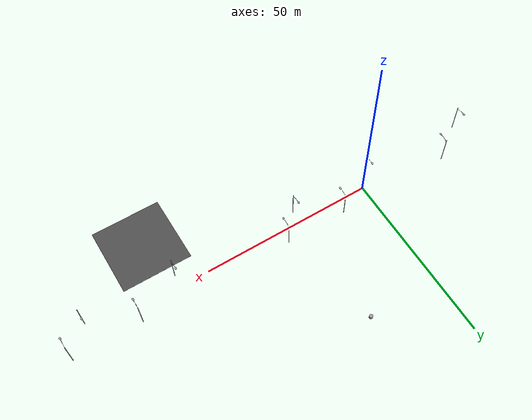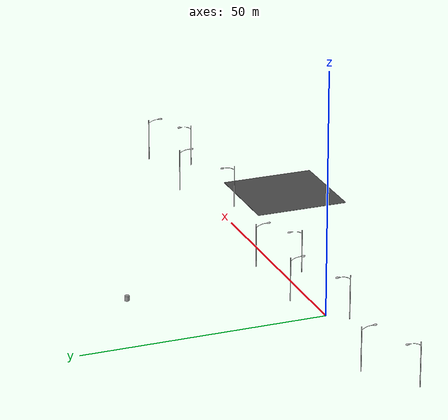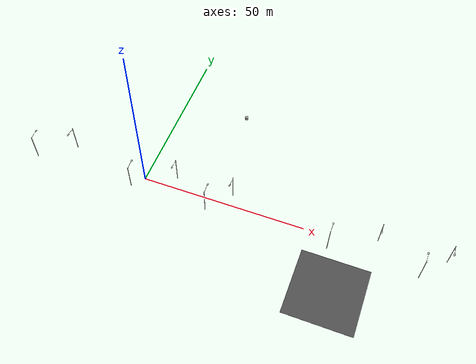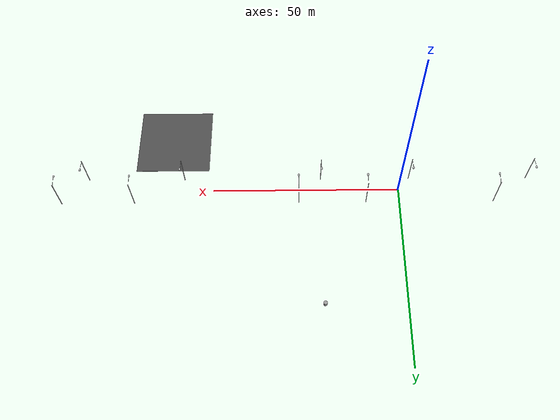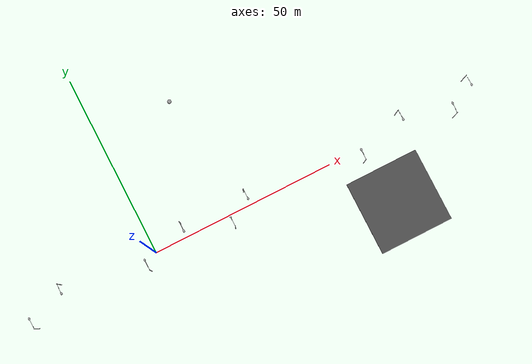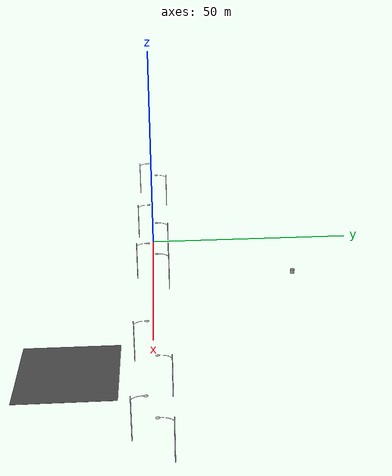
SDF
<sdf version="1.5">
 <world name="default">
  <scene>
   <grid>0</grid>
   <origin_visual>0</origin_visual>
   <ambient>0.592 0.624 0.635 1</ambient>
   <sky><clouds><speed>12</speed></clouds></sky>
   <background>0.35 0.35 0.35 1</background>
   <shadows>1</shadows>
  </scene>
  <physics name="default_physics" default="0" type="ode">
   <gravity>0 0 -9.8066</gravity>
   <ode>
    <solver>
     <type>quick</type>
     <iters>10</iters>
     <sor>1.3</sor>
     <use_dynamic_moi_rescaling>0</use_dynamic_moi_rescaling>
    </solver>
    <constraints>
     <cfm>0</cfm>
     <erp>0.2</erp>
     <contact_max_correcting_vel>100</contact_max_correcting_vel>
     <contact_surface_layer>0.001</contact_surface_layer>
    </constraints>
   </ode>
   <max_step_size>0.004</max_step_size>
   <real_time_factor>1000.0</real_time_factor>
   <real_time_update_rate>250</real_time_update_rate>
   <magnetic_field>6.0e-6 2.3e-5 -4.2e-5</magnetic_field>
  </physics>
  <light name="sun" type="directional">
   <pose>0 0 1000 0 -0 0</pose>
   <diffuse>0.8 0.8 0.8 1</diffuse>
   <specular>0.5 0.5 0.5 1</specular>
   <attenuation>
    <range>1000</range>
    <constant>0.9</constant>
    <linear>0.01</linear>
    <quadratic>0.001</quadratic>
   </attenuation>
   <direction>-0.5 0.1 -0.4</direction>
  </light>
  <model name="ground_plane">
   <static>1</static>
   <link name="link">
    <collision name="collision">
     <geometry><plane><normal>0 0 1</normal><size>100 100</size></plane></geometry>
     <surface><friction><ode><mu>100</mu><mu2>50</mu2></ode></friction></surface>
    </collision>
   </link>
  </model>
  <model name="asphalt_plane_74">
   <static>1</static>
   <pose>61.581 -16.664 0 0 -0 0</pose>
   <link name="link">
    <visual name="visual">
     <geometry><box><size>20 20 0.05</size></box></geometry>
     <material>
      <script>
       <uri>model://asphalt_plane/materials/scripts</uri>
       <uri>model://asphalt_plane/materials/textures</uri>
       <name>vrc/asphalt</name>
      </script>
     </material>
    </visual>
   </link>
  </model>
  <model name="lamp_post_189">
   <static>1</static>
   <link name="link">
    <collision name="collision">
     <geometry><mesh><uri>model://lamp_post/meshes/lamp_post.dae</uri><scale>3 3 3</scale></mesh></geometry>
    </collision>
    <visual name="visual">
     <geometry><mesh><uri>model://lamp_post/meshes/lamp_post.dae</uri><scale>3 3 3</scale></mesh></geometry>
    </visual>
   </link>
   <pose>-35.1 -3.7 0 0 -0 3.14</pose>
  </model>
  <model name="lamp_post_190">
   <static>1</static>
   <link name="link">
    <collision name="collision">
     <geometry><mesh><uri>model://lamp_post/meshes/lamp_post.dae</uri><scale>3 3 3</scale></mesh></geometry>
    </collision>
    <visual name="visual">
     <geometry><mesh><uri>model://lamp_post/meshes/lamp_post.dae</uri><scale>3 3 3</scale></mesh></geometry>
    </visual>
   </link>
   <pose>-25.2 3.7 0 0 -0 0</pose>
  </model>
  <model name="lamp_post_191">
   <static>1</static>
   <link name="link">
    <collision name="collision">
     <geometry><mesh><uri>model://lamp_post/meshes/lamp_post.dae</uri><scale>3 3 3</scale></mesh></geometry>
    </collision>
    <visual name="visual">
     <geometry><mesh><uri>model://lamp_post/meshes/lamp_post.dae</uri><scale>3 3 3</scale></mesh></geometry>
    </visual>
   </link>
   <pose>-3 -3.7 0 0 -0 3.14</pose>
  </model>
  <model name="lamp_post_192">
   <static>1</static>
   <link name="link">
    <collision name="collision">
     <geometry><mesh><uri>model://lamp_post/meshes/lamp_post.dae</uri><scale>3 3 3</scale></mesh></geometry>
    </collision>
    <visual name="visual">
     <geometry><mesh><uri>model://lamp_post/meshes/lamp_post.dae</uri><scale>3 3 3</scale></mesh></geometry>
    </visual>
   </link>
   <pose>9 3.7 0 0 -0 0</pose>
  </model>
  <model name="lamp_post_193">
   <static>1</static>
   <link name="link">
    <collision name="collision">
     <geometry><mesh><uri>model://lamp_post/meshes/lamp_post.dae</uri><scale>3 3 3</scale></mesh></geometry>
    </collision>
    <visual name="visual">
     <geometry><mesh><uri>model://lamp_post/meshes/lamp_post.dae</uri><scale>3 3 3</scale></mesh></geometry>
    </visual>
   </link>
   <pose>21 -3.7 0 0 -0 3.14</pose>
  </model>
  <model name="lamp_post_194">
   <static>1</static>
   <link name="link">
    <collision name="collision">
     <geometry><mesh><uri>model://lamp_post/meshes/lamp_post.dae</uri><scale>3 3 3</scale></mesh></geometry>
    </collision>
    <visual name="visual">
     <geometry><mesh><uri>model://lamp_post/meshes/lamp_post.dae</uri><scale>3 3 3</scale></mesh></geometry>
    </visual>
   </link>
   <pose>27 3.7 0 0 -0 0</pose>
  </model>
  <model name="lamp_post_195">
   <static>1</static>
   <link name="link">
    <collision name="collision">
     <geometry><mesh><uri>model://lamp_post/meshes/lamp_post.dae</uri><scale>3 3 3</scale></mesh></geometry>
    </collision>
    <visual name="visual">
     <geometry><mesh><uri>model://lamp_post/meshes/lamp_post.dae</uri><scale>3 3 3</scale></mesh></geometry>
    </visual>
   </link>
   <pose>58 -3.7 0 0 -0 3.14</pose>
  </model>
  <model name="lamp_post_196">
   <static>1</static>
   <link name="link">
    <collision name="collision">
     <geometry><mesh><uri>model://lamp_post/meshes/lamp_post.dae</uri><scale>3 3 3</scale></mesh></geometry>
    </collision>
    <visual name="visual">
     <geometry><mesh><uri>model://lamp_post/meshes/lamp_post.dae</uri><scale>3 3 3</scale></mesh></geometry>
    </visual>
   </link>
   <pose>71 3.7 0 0 -0 0</pose>
  </model>
  <model name="lamp_post_197">
   <static>1</static>
   <link name="link">
    <collision name="collision">
     <geometry><mesh><uri>model://lamp_post/meshes/lamp_post.dae</uri><scale>3 3 3</scale></mesh></geometry>
    </collision>
    <visual name="visual">
     <geometry><mesh><uri>model://lamp_post/meshes/lamp_post.dae</uri><scale>3 3 3</scale></mesh></geometry>
    </visual>
   </link>
   <pose>84 -3.7 0 0 -0 3.14</pose>
  </model>
  <model name="lamp_post_198">
   <static>1</static>
   <link name="link">
    <collision name="collision">
     <geometry><mesh><uri>model://lamp_post/meshes/lamp_post.dae</uri><scale>3 3 3</scale></mesh></geometry>
    </collision>
    <visual name="visual">
     <geometry><mesh><uri>model://lamp_post/meshes/lamp_post.dae</uri><scale>3 3 3</scale></mesh></geometry>
    </visual>
   </link>
   <pose>90.5 3.7 0 0 -0 0</pose>
  </model>
  <gravity>0 0 -9.8</gravity>
  <magnetic_field>6e-06 2.3e-05 -4.2e-05</magnetic_field>
  <atmosphere type="adiabatic"/>
  <spherical_coordinates>
   <surface_model>EARTH_WGS84</surface_model>
   <latitude_deg>0</latitude_deg>
   <longitude_deg>0</longitude_deg>
   <elevation>0</elevation>
   <heading_deg>0</heading_deg>
  </spherical_coordinates>
  <model name="unit_cylinder">
   <pose>20.6722 33.4177 0.49998 0 -0 0</pose>
   <link name="link">
    <inertial>
     <mass>1</mass>
     <inertia><ixx>0.145833</ixx><ixy>0</ixy><ixz>0</ixz><iyy>0.145833</iyy><iyz>0</iyz><izz>0.125</izz></inertia>
    </inertial>
    <collision name="collision">
     <geometry><cylinder><radius>0.5</radius><length>1</length></cylinder></geometry>
    </collision>
    <visual name="visual">
     <geometry><cylinder><radius>0.5</radius><length>1</length></cylinder></geometry>
     <material>
      <script><name>Gazebo/Grey</name><uri>file://media/materials/scripts/gazebo.material</uri></script>
     </material>
    </visual>
   </link>
  </model>
  <light name="user_directional_light_0" type="directional">
   <pose>24.0343 3.49866 1 0 -0 0</pose>
   <diffuse>0.5 0.5 0.5 1</diffuse>
   <specular>0.1 0.1 0.1 1</specular>
   <direction>0.1 0.1 -0.9</direction>
   <attenuation>
    <range>20</range>
    <constant>0.5</constant>
    <linear>0.01</linear>
    <quadratic>0.001</quadratic>
   </attenuation>
  </light>
  <light name="user_point_light_0" type="point">
   <pose>-70.5235 -10.3411 1 0 -0 0</pose>
   <diffuse>0.5 0.5 0.5 1</diffuse>
   <specular>0.1 0.1 0.1 1</specular>
   <attenuation>
    <range>20</range>
    <constant>0.5</constant>
    <linear>0.01</linear>
    <quadratic>0.001</quadratic>
   </attenuation>
   <cast_shadows>0</cast_shadows>
   <direction>0 0 -1</direction>
  </light>
 </world>
</sdf>
